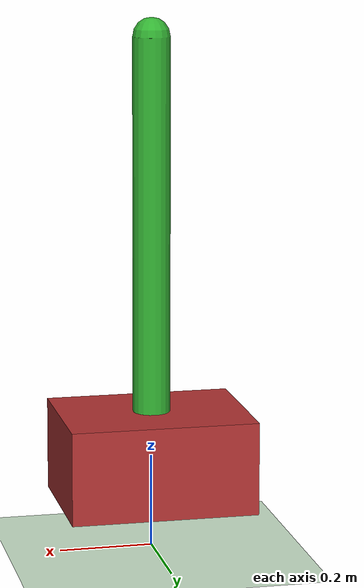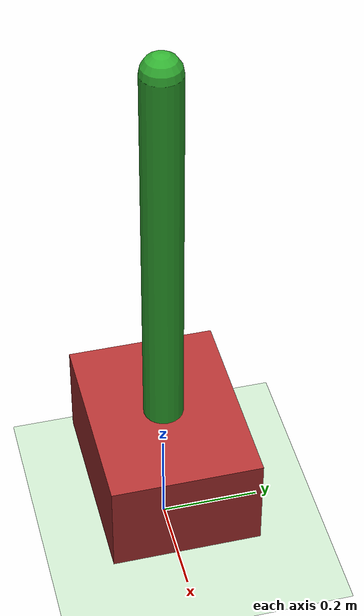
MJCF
<mujoco model="cartpole">
  <option timestep="0.002" gravity="0 0 -9.81"/>
  <worldbody>
    <light pos="0 0 3" dir="0 0 -1"/>
    <geom name="floor" type="plane" size="2 2 0.1" rgba="0.8 0.9 0.8 1"/>
    <body name="cart" pos="0 0 0.2">
      <joint name="slider" type="slide" axis="1 0 0" range="-1.5 1.5"/>
      <geom name="cart_geom" type="box" size="0.2 0.15 0.1"
            rgba="0.7 0.2 0.2 1" mass="1.0"/>
      <body name="pole" pos="0 0 0.1">
        <joint name="hinge" type="hinge" axis="0 1 0"/>
        <geom name="pole_geom" type="capsule" size="0.04 0.4"
              pos="0 0 0.4" rgba="0.2 0.7 0.2 1" mass="0.1"/>
      </body>
    </body>
  </worldbody>
  <actuator>
    <motor name="slide_motor" joint="slider"
           ctrlrange="-1 1" ctrllimited="true" gear="10"/>
  </actuator>
</mujoco>
